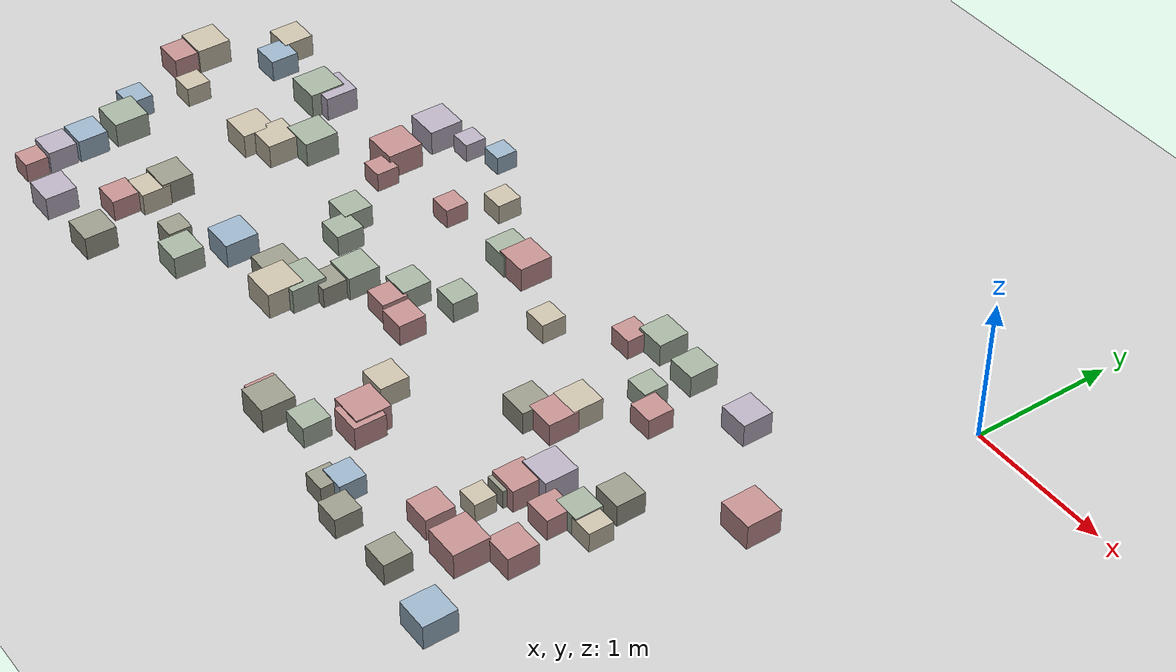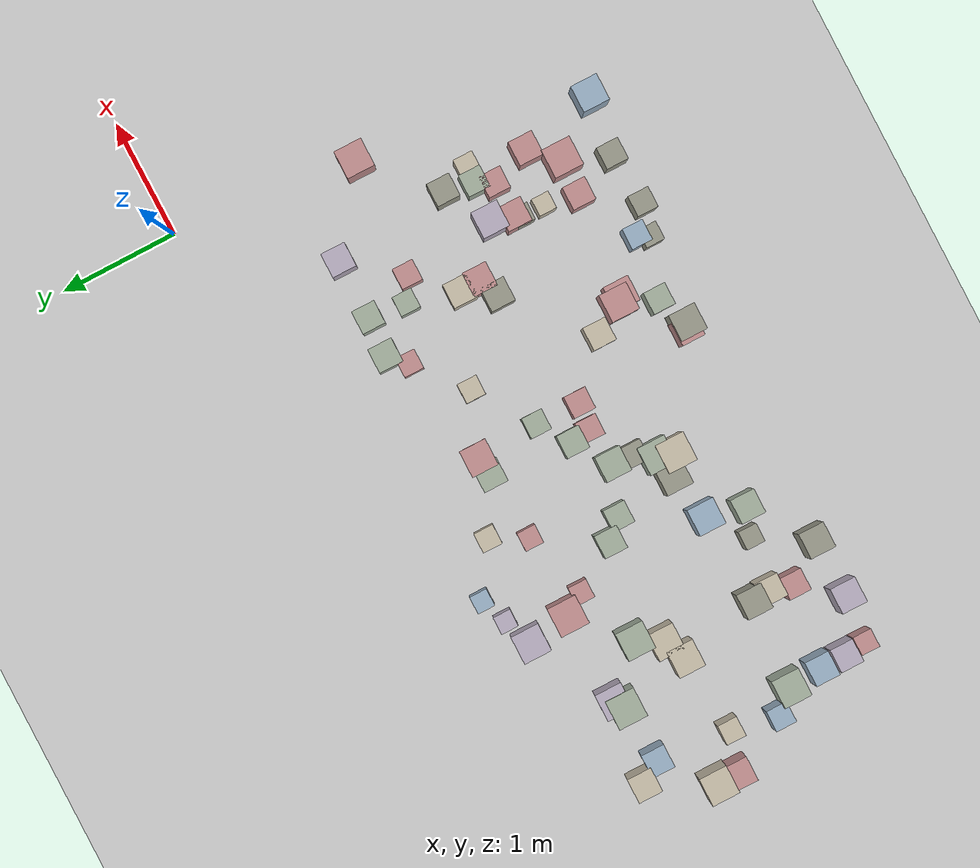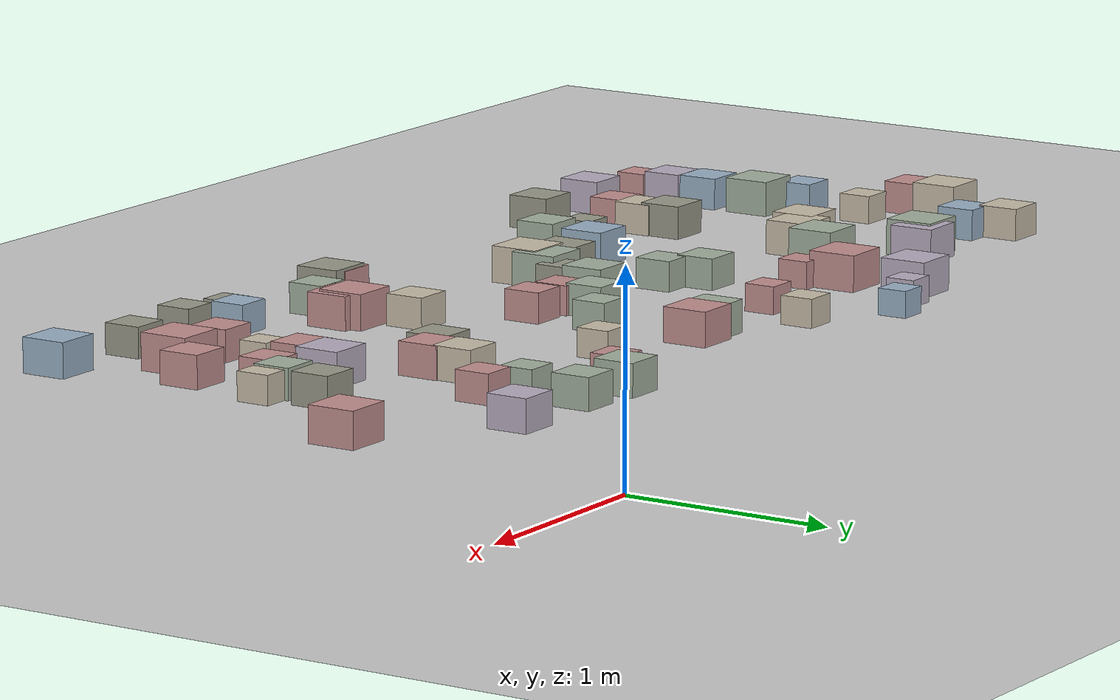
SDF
<sdf version="1.6">
 <world name="small_maze_world">
  <include><uri>model://ground_plane</uri></include>
  <include><uri>model://sun</uri></include>
  <model name="box_12">
   <static>false</static>
   <pose>-3.56 -2.64 0.05 0 0 0</pose>
   <link name="link">
    <inertial>
     <mass>0.2</mass>
     <inertia><ixx>0.001</ixx><iyy>0.001</iyy><izz>0.001</izz><ixy>0</ixy><ixz>0</ixz><iyz>0</iyz></inertia>
    </inertial>
    <collision name="collision"><geometry><box><size>0.23 0.23 0.23</size></box></geometry></collision>
    <visual name="visual">
     <geometry><box><size>0.23 0.23 0.23</size></box></geometry>
     <material><ambient>0.6 0.6 0.54 1</ambient><diffuse>0.6 0.6 0.54 1</diffuse></material>
    </visual>
   </link>
  </model>
  <model name="box_14">
   <static>false</static>
   <pose>-2.72 -1.34 0.05 0 0 0</pose>
   <link name="link">
    <inertial>
     <mass>0.2</mass>
     <inertia><ixx>0.001</ixx><iyy>0.001</iyy><izz>0.001</izz><ixy>0</ixy><ixz>0</ixz><iyz>0</iyz></inertia>
    </inertial>
    <collision name="collision"><geometry><box><size>0.23 0.23 0.23</size></box></geometry></collision>
    <visual name="visual">
     <geometry><box><size>0.23 0.23 0.23</size></box></geometry>
     <material><ambient>0.76 0.56 0.56 1</ambient><diffuse>0.76 0.56 0.56 1</diffuse></material>
    </visual>
   </link>
  </model>
  <model name="box_16">
   <static>false</static>
   <pose>-4.92 -1.4 0.05 0 0 0</pose>
   <link name="link">
    <inertial>
     <mass>0.2</mass>
     <inertia><ixx>0.001</ixx><iyy>0.001</iyy><izz>0.001</izz><ixy>0</ixy><ixz>0</ixz><iyz>0</iyz></inertia>
    </inertial>
    <collision name="collision"><geometry><box><size>0.23 0.23 0.23</size></box></geometry></collision>
    <visual name="visual">
     <geometry><box><size>0.23 0.23 0.23</size></box></geometry>
     <material><ambient>0.72 0.68 0.75 1</ambient><diffuse>0.72 0.68 0.75 1</diffuse></material>
    </visual>
   </link>
  </model>
  <model name="box_17">
   <static>false</static>
   <pose>-1.17 -2.54 0.05 0 0 0</pose>
   <link name="link">
    <inertial>
     <mass>0.2</mass>
     <inertia><ixx>0.001</ixx><iyy>0.001</iyy><izz>0.001</izz><ixy>0</ixy><ixz>0</ixz><iyz>0</iyz></inertia>
    </inertial>
    <collision name="collision"><geometry><box><size>0.15 0.15 0.15</size></box></geometry></collision>
    <visual name="visual">
     <geometry><box><size>0.15 0.15 0.15</size></box></geometry>
     <material><ambient>0.6 0.6 0.54 1</ambient><diffuse>0.6 0.6 0.54 1</diffuse></material>
    </visual>
   </link>
  </model>
  <model name="box_32">
   <static>false</static>
   <pose>-1.09 -2.29 0.05 0 0 0</pose>
   <link name="link">
    <inertial>
     <mass>0.2</mass>
     <inertia><ixx>0.001</ixx><iyy>0.001</iyy><izz>0.001</izz><ixy>0</ixy><ixz>0</ixz><iyz>0</iyz></inertia>
    </inertial>
    <collision name="collision"><geometry><box><size>0.23 0.23 0.23</size></box></geometry></collision>
    <visual name="visual">
     <geometry><box><size>0.23 0.23 0.23</size></box></geometry>
     <material><ambient>0.72 0.68 0.75 1</ambient><diffuse>0.72 0.68 0.75 1</diffuse></material>
    </visual>
   </link>
  </model>
  <model name="box_35">
   <static>false</static>
   <pose>-1.47 -2.0 0.05 0 0 0</pose>
   <link name="link">
    <inertial>
     <mass>0.2</mass>
     <inertia><ixx>0.001</ixx><iyy>0.001</iyy><izz>0.001</izz><ixy>0</ixy><ixz>0</ixz><iyz>0</iyz></inertia>
    </inertial>
    <collision name="collision"><geometry><box><size>0.21 0.21 0.21</size></box></geometry></collision>
    <visual name="visual">
     <geometry><box><size>0.21 0.21 0.21</size></box></geometry>
     <material><ambient>0.76 0.56 0.56 1</ambient><diffuse>0.76 0.56 0.56 1</diffuse></material>
    </visual>
   </link>
  </model>
  <model name="box_37">
   <static>false</static>
   <pose>-0.92 -3.02 0.05 0 0 0</pose>
   <link name="link">
    <inertial>
     <mass>0.2</mass>
     <inertia><ixx>0.001</ixx><iyy>0.001</iyy><izz>0.001</izz><ixy>0</ixy><ixz>0</ixz><iyz>0</iyz></inertia>
    </inertial>
    <collision name="collision"><geometry><box><size>0.25 0.25 0.25</size></box></geometry></collision>
    <visual name="visual">
     <geometry><box><size>0.25 0.25 0.25</size></box></geometry>
     <material><ambient>0.76 0.56 0.56 1</ambient><diffuse>0.76 0.56 0.56 1</diffuse></material>
    </visual>
   </link>
  </model>
  <model name="box_50">
   <static>false</static>
   <pose>-1.17 -2.73 0.05 0 0 0</pose>
   <link name="link">
    <inertial>
     <mass>0.2</mass>
     <inertia><ixx>0.001</ixx><iyy>0.001</iyy><izz>0.001</izz><ixy>0</ixy><ixz>0</ixz><iyz>0</iyz></inertia>
    </inertial>
    <collision name="collision"><geometry><box><size>0.15 0.15 0.15</size></box></geometry></collision>
    <visual name="visual">
     <geometry><box><size>0.15 0.15 0.15</size></box></geometry>
     <material><ambient>0.78 0.74 0.66 1</ambient><diffuse>0.78 0.74 0.66 1</diffuse></material>
    </visual>
   </link>
  </model>
  <model name="box_55">
   <static>false</static>
   <pose>-2.53 -3.3 0.05 0 0 0</pose>
   <link name="link">
    <inertial>
     <mass>0.2</mass>
     <inertia><ixx>0.001</ixx><iyy>0.001</iyy><izz>0.001</izz><ixy>0</ixy><ixz>0</ixz><iyz>0</iyz></inertia>
    </inertial>
    <collision name="collision"><geometry><box><size>0.23 0.23 0.23</size></box></geometry></collision>
    <visual name="visual">
     <geometry><box><size>0.23 0.23 0.23</size></box></geometry>
     <material><ambient>0.6 0.6 0.54 1</ambient><diffuse>0.6 0.6 0.54 1</diffuse></material>
    </visual>
   </link>
  </model>
  <model name="box_57">
   <static>false</static>
   <pose>-3.35 -2.6 0.05 0 0 0</pose>
   <link name="link">
    <inertial>
     <mass>0.2</mass>
     <inertia><ixx>0.001</ixx><iyy>0.001</iyy><izz>0.001</izz><ixy>0</ixy><ixz>0</ixz><iyz>0</iyz></inertia>
    </inertial>
    <collision name="collision"><geometry><box><size>0.24 0.24 0.24</size></box></geometry></collision>
    <visual name="visual">
     <geometry><box><size>0.24 0.24 0.24</size></box></geometry>
     <material><ambient>0.64 0.69 0.62 1</ambient><diffuse>0.64 0.69 0.62 1</diffuse></material>
    </visual>
   </link>
  </model>
  <model name="box_58">
   <static>false</static>
   <pose>-0.17 -1.56 0.05 0 0 0</pose>
   <link name="link">
    <inertial>
     <mass>0.2</mass>
     <inertia><ixx>0.001</ixx><iyy>0.001</iyy><izz>0.001</izz><ixy>0</ixy><ixz>0</ixz><iyz>0</iyz></inertia>
    </inertial>
    <collision name="collision"><geometry><box><size>0.24 0.24 0.24</size></box></geometry></collision>
    <visual name="visual">
     <geometry><box><size>0.24 0.24 0.24</size></box></geometry>
     <material><ambient>0.76 0.56 0.56 1</ambient><diffuse>0.76 0.56 0.56 1</diffuse></material>
    </visual>
   </link>
  </model>
  <model name="box_67">
   <static>false</static>
   <pose>-5.43 -3.39 0.05 0 0 0</pose>
   <link name="link">
    <inertial>
     <mass>0.2</mass>
     <inertia><ixx>0.001</ixx><iyy>0.001</iyy><izz>0.001</izz><ixy>0</ixy><ixz>0</ixz><iyz>0</iyz></inertia>
    </inertial>
    <collision name="collision"><geometry><box><size>0.16 0.16 0.16</size></box></geometry></collision>
    <visual name="visual">
     <geometry><box><size>0.16 0.16 0.16</size></box></geometry>
     <material><ambient>0.76 0.56 0.56 1</ambient><diffuse>0.76 0.56 0.56 1</diffuse></material>
    </visual>
   </link>
  </model>
  <model name="box_70">
   <static>false</static>
   <pose>-0.72 -2.8 0.05 0 0 0</pose>
   <link name="link">
    <inertial>
     <mass>0.2</mass>
     <inertia><ixx>0.001</ixx><iyy>0.001</iyy><izz>0.001</izz><ixy>0</ixy><ixz>0</ixz><iyz>0</iyz></inertia>
    </inertial>
    <collision name="collision"><geometry><box><size>0.21 0.21 0.21</size></box></geometry></collision>
    <visual name="visual">
     <geometry><box><size>0.21 0.21 0.21</size></box></geometry>
     <material><ambient>0.76 0.56 0.56 1</ambient><diffuse>0.76 0.56 0.56 1</diffuse></material>
    </visual>
   </link>
  </model>
  <model name="box_74">
   <static>false</static>
   <pose>-2.26 -3.19 0.05 0 0 0</pose>
   <link name="link">
    <inertial>
     <mass>0.2</mass>
     <inertia><ixx>0.001</ixx><iyy>0.001</iyy><izz>0.001</izz><ixy>0</ixy><ixz>0</ixz><iyz>0</iyz></inertia>
    </inertial>
    <collision name="collision"><geometry><box><size>0.19 0.19 0.19</size></box></geometry></collision>
    <visual name="visual">
     <geometry><box><size>0.19 0.19 0.19</size></box></geometry>
     <material><ambient>0.64 0.69 0.62 1</ambient><diffuse>0.64 0.69 0.62 1</diffuse></material>
    </visual>
   </link>
  </model>
  <model name="box_75">
   <static>false</static>
   <pose>-3.64 -2.11 0.05 0 0 0</pose>
   <link name="link">
    <inertial>
     <mass>0.2</mass>
     <inertia><ixx>0.001</ixx><iyy>0.001</iyy><izz>0.001</izz><ixy>0</ixy><ixz>0</ixz><iyz>0</iyz></inertia>
    </inertial>
    <collision name="collision"><geometry><box><size>0.19 0.19 0.19</size></box></geometry></collision>
    <visual name="visual">
     <geometry><box><size>0.19 0.19 0.19</size></box></geometry>
     <material><ambient>0.64 0.69 0.62 1</ambient><diffuse>0.64 0.69 0.62 1</diffuse></material>
    </visual>
   </link>
  </model>
  <model name="box_76">
   <static>false</static>
   <pose>-0.76 -2.32 0.05 0 0 0</pose>
   <link name="link">
    <inertial>
     <mass>0.2</mass>
     <inertia><ixx>0.001</ixx><iyy>0.001</iyy><izz>0.001</izz><ixy>0</ixy><ixz>0</ixz><iyz>0</iyz></inertia>
    </inertial>
    <collision name="collision"><geometry><box><size>0.19 0.19 0.19</size></box></geometry></collision>
    <visual name="visual">
     <geometry><box><size>0.19 0.19 0.19</size></box></geometry>
     <material><ambient>0.64 0.69 0.62 1</ambient><diffuse>0.64 0.69 0.62 1</diffuse></material>
    </visual>
   </link>
  </model>
  <model name="box_77">
   <static>false</static>
   <pose>-5.64 -2.52 0.05 0 0 0</pose>
   <link name="link">
    <inertial>
     <mass>0.2</mass>
     <inertia><ixx>0.001</ixx><iyy>0.001</iyy><izz>0.001</izz><ixy>0</ixy><ixz>0</ixz><iyz>0</iyz></inertia>
    </inertial>
    <collision name="collision"><geometry><box><size>0.18 0.18 0.18</size></box></geometry></collision>
    <visual name="visual">
     <geometry><box><size>0.18 0.18 0.18</size></box></geometry>
     <material><ambient>0.6 0.69 0.77 1</ambient><diffuse>0.6 0.69 0.77 1</diffuse></material>
    </visual>
   </link>
  </model>
  <model name="box_97">
   <static>false</static>
   <pose>-1.17 -1.51 0.05 0 0 0</pose>
   <link name="link">
    <inertial>
     <mass>0.2</mass>
     <inertia><ixx>0.001</ixx><iyy>0.001</iyy><izz>0.001</izz><ixy>0</ixy><ixz>0</ixz><iyz>0</iyz></inertia>
    </inertial>
    <collision name="collision"><geometry><box><size>0.18 0.18 0.18</size></box></geometry></collision>
    <visual name="visual">
     <geometry><box><size>0.18 0.18 0.18</size></box></geometry>
     <material><ambient>0.76 0.56 0.56 1</ambient><diffuse>0.76 0.56 0.56 1</diffuse></material>
    </visual>
   </link>
  </model>
  <model name="box_108">
   <static>false</static>
   <pose>-1.07 -3.39 0.05 0 0 0</pose>
   <link name="link">
    <inertial>
     <mass>0.2</mass>
     <inertia><ixx>0.001</ixx><iyy>0.001</iyy><izz>0.001</izz><ixy>0</ixy><ixz>0</ixz><iyz>0</iyz></inertia>
    </inertial>
    <collision name="collision"><geometry><box><size>0.19 0.19 0.19</size></box></geometry></collision>
    <visual name="visual">
     <geometry><box><size>0.19 0.19 0.19</size></box></geometry>
     <material><ambient>0.6 0.6 0.54 1</ambient><diffuse>0.6 0.6 0.54 1</diffuse></material>
    </visual>
   </link>
  </model>
  <model name="box_124">
   <static>false</static>
   <pose>-5.62 -1.31 0.05 0 0 0</pose>
   <link name="link">
    <inertial>
     <mass>0.2</mass>
     <inertia><ixx>0.001</ixx><iyy>0.001</iyy><izz>0.001</izz><ixy>0</ixy><ixz>0</ixz><iyz>0</iyz></inertia>
    </inertial>
    <collision name="collision"><geometry><box><size>0.21 0.21 0.21</size></box></geometry></collision>
    <visual name="visual">
     <geometry><box><size>0.21 0.21 0.21</size></box></geometry>
     <material><ambient>0.78 0.74 0.66 1</ambient><diffuse>0.78 0.74 0.66 1</diffuse></material>
    </visual>
   </link>
  </model>
  <model name="box_130">
   <static>false</static>
   <pose>-3.25 -2.26 0.05 0 0 0</pose>
   <link name="link">
    <inertial>
     <mass>0.2</mass>
     <inertia><ixx>0.001</ixx><iyy>0.001</iyy><izz>0.001</izz><ixy>0</ixy><ixz>0</ixz><iyz>0</iyz></inertia>
    </inertial>
    <collision name="collision"><geometry><box><size>0.22 0.22 0.22</size></box></geometry></collision>
    <visual name="visual">
     <geometry><box><size>0.22 0.22 0.22</size></box></geometry>
     <material><ambient>0.64 0.69 0.62 1</ambient><diffuse>0.64 0.69 0.62 1</diffuse></material>
    </visual>
   </link>
  </model>
  <model name="box_132">
   <static>false</static>
   <pose>-4.53 -3.41 0.05 0 0 0</pose>
   <link name="link">
    <inertial>
     <mass>0.2</mass>
     <inertia><ixx>0.001</ixx><iyy>0.001</iyy><izz>0.001</izz><ixy>0</ixy><ixz>0</ixz><iyz>0</iyz></inertia>
    </inertial>
    <collision name="collision"><geometry><box><size>0.22 0.22 0.22</size></box></geometry></collision>
    <visual name="visual">
     <geometry><box><size>0.22 0.22 0.22</size></box></geometry>
     <material><ambient>0.6 0.6 0.54 1</ambient><diffuse>0.6 0.6 0.54 1</diffuse></material>
    </visual>
   </link>
  </model>
  <model name="box_148">
   <static>false</static>
   <pose>-2.69 -1.87 0.05 0 0 0</pose>
   <link name="link">
    <inertial>
     <mass>0.2</mass>
     <inertia><ixx>0.001</ixx><iyy>0.001</iyy><izz>0.001</izz><ixy>0</ixy><ixz>0</ixz><iyz>0</iyz></inertia>
    </inertial>
    <collision name="collision"><geometry><box><size>0.18 0.18 0.18</size></box></geometry></collision>
    <visual name="visual">
     <geometry><box><size>0.18 0.18 0.18</size></box></geometry>
     <material><ambient>0.64 0.69 0.62 1</ambient><diffuse>0.64 0.69 0.62 1</diffuse></material>
    </visual>
   </link>
  </model>
  <model name="box_159">
   <static>false</static>
   <pose>-2.58 -3.28 0.05 0 0 0</pose>
   <link name="link">
    <inertial>
     <mass>0.2</mass>
     <inertia><ixx>0.001</ixx><iyy>0.001</iyy><izz>0.001</izz><ixy>0</ixy><ixz>0</ixz><iyz>0</iyz></inertia>
    </inertial>
    <collision name="collision"><geometry><box><size>0.2 0.2 0.2</size></box></geometry></collision>
    <visual name="visual">
     <geometry><box><size>0.2 0.2 0.2</size></box></geometry>
     <material><ambient>0.76 0.56 0.56 1</ambient><diffuse>0.76 0.56 0.56 1</diffuse></material>
    </visual>
   </link>
  </model>
  <model name="box_163">
   <static>false</static>
   <pose>-5.03 -3.43 0.05 0 0 0</pose>
   <link name="link">
    <inertial>
     <mass>0.2</mass>
     <inertia><ixx>0.001</ixx><iyy>0.001</iyy><izz>0.001</izz><ixy>0</ixy><ixz>0</ixz><iyz>0</iyz></inertia>
    </inertial>
    <collision name="collision"><geometry><box><size>0.22 0.22 0.22</size></box></geometry></collision>
    <visual name="visual">
     <geometry><box><size>0.22 0.22 0.22</size></box></geometry>
     <material><ambient>0.72 0.68 0.75 1</ambient><diffuse>0.72 0.68 0.75 1</diffuse></material>
    </visual>
   </link>
  </model>
  <model name="box_166">
   <static>false</static>
   <pose>-5.01 -1.46 0.05 0 0 0</pose>
   <link name="link">
    <inertial>
     <mass>0.2</mass>
     <inertia><ixx>0.001</ixx><iyy>0.001</iyy><izz>0.001</izz><ixy>0</ixy><ixz>0</ixz><iyz>0</iyz></inertia>
    </inertial>
    <collision name="collision"><geometry><box><size>0.25 0.25 0.25</size></box></geometry></collision>
    <visual name="visual">
     <geometry><box><size>0.25 0.25 0.25</size></box></geometry>
     <material><ambient>0.64 0.69 0.62 1</ambient><diffuse>0.64 0.69 0.62 1</diffuse></material>
    </visual>
   </link>
  </model>
  <model name="box_167">
   <static>false</static>
   <pose>-5.45 -2.98 0.05 0 0 0</pose>
   <link name="link">
    <inertial>
     <mass>0.2</mass>
     <inertia><ixx>0.001</ixx><iyy>0.001</iyy><izz>0.001</izz><ixy>0</ixy><ixz>0</ixz><iyz>0</iyz></inertia>
    </inertial>
    <collision name="collision"><geometry><box><size>0.21 0.21 0.21</size></box></geometry></collision>
    <visual name="visual">
     <geometry><box><size>0.21 0.21 0.21</size></box></geometry>
     <material><ambient>0.6 0.69 0.77 1</ambient><diffuse>0.6 0.69 0.77 1</diffuse></material>
    </visual>
   </link>
  </model>
  <model name="box_185">
   <static>false</static>
   <pose>-1.33 -1.08 0.05 0 0 0</pose>
   <link name="link">
    <inertial>
     <mass>0.2</mass>
     <inertia><ixx>0.001</ixx><iyy>0.001</iyy><izz>0.001</izz><ixy>0</ixy><ixz>0</ixz><iyz>0</iyz></inertia>
    </inertial>
    <collision name="collision"><geometry><box><size>0.2 0.2 0.2</size></box></geometry></collision>
    <visual name="visual">
     <geometry><box><size>0.2 0.2 0.2</size></box></geometry>
     <material><ambient>0.64 0.69 0.62 1</ambient><diffuse>0.64 0.69 0.62 1</diffuse></material>
    </visual>
   </link>
  </model>
  <model name="box_189">
   <static>false</static>
   <pose>-4.71 -2.91 0.05 0 0 0</pose>
   <link name="link">
    <inertial>
     <mass>0.2</mass>
     <inertia><ixx>0.001</ixx><iyy>0.001</iyy><izz>0.001</izz><ixy>0</ixy><ixz>0</ixz><iyz>0</iyz></inertia>
    </inertial>
    <collision name="collision"><geometry><box><size>0.2 0.2 0.2</size></box></geometry></collision>
    <visual name="visual">
     <geometry><box><size>0.2 0.2 0.2</size></box></geometry>
     <material><ambient>0.78 0.74 0.66 1</ambient><diffuse>0.78 0.74 0.66 1</diffuse></material>
    </visual>
   </link>
  </model>
  <model name="box_199">
   <static>false</static>
   <pose>-4.27 -2.97 0.05 0 0 0</pose>
   <link name="link">
    <inertial>
     <mass>0.2</mass>
     <inertia><ixx>0.001</ixx><iyy>0.001</iyy><izz>0.001</izz><ixy>0</ixy><ixz>0</ixz><iyz>0</iyz></inertia>
    </inertial>
    <collision name="collision"><geometry><box><size>0.16 0.16 0.16</size></box></geometry></collision>
    <visual name="visual">
     <geometry><box><size>0.16 0.16 0.16</size></box></geometry>
     <material><ambient>0.6 0.6 0.54 1</ambient><diffuse>0.6 0.6 0.54 1</diffuse></material>
    </visual>
   </link>
  </model>
  <model name="box_210">
   <static>false</static>
   <pose>-5.47 -2.69 0.05 0 0 0</pose>
   <link name="link">
    <inertial>
     <mass>0.2</mass>
     <inertia><ixx>0.001</ixx><iyy>0.001</iyy><izz>0.001</izz><ixy>0</ixy><ixz>0</ixz><iyz>0</iyz></inertia>
    </inertial>
    <collision name="collision"><geometry><box><size>0.24 0.24 0.24</size></box></geometry></collision>
    <visual name="visual">
     <geometry><box><size>0.24 0.24 0.24</size></box></geometry>
     <material><ambient>0.64 0.69 0.62 1</ambient><diffuse>0.64 0.69 0.62 1</diffuse></material>
    </visual>
   </link>
  </model>
  <model name="box_227">
   <static>false</static>
   <pose>-0.62 -2.33 0.05 0 0 0</pose>
   <link name="link">
    <inertial>
     <mass>0.2</mass>
     <inertia><ixx>0.001</ixx><iyy>0.001</iyy><izz>0.001</izz><ixy>0</ixy><ixz>0</ixz><iyz>0</iyz></inertia>
    </inertial>
    <collision name="collision"><geometry><box><size>0.17 0.17 0.17</size></box></geometry></collision>
    <visual name="visual">
     <geometry><box><size>0.17 0.17 0.17</size></box></geometry>
     <material><ambient>0.78 0.74 0.66 1</ambient><diffuse>0.78 0.74 0.66 1</diffuse></material>
    </visual>
   </link>
  </model>
  <model name="box_228">
   <static>false</static>
   <pose>-1.8 -1.2 0.05 0 0 0</pose>
   <link name="link">
    <inertial>
     <mass>0.2</mass>
     <inertia><ixx>0.001</ixx><iyy>0.001</iyy><izz>0.001</izz><ixy>0</ixy><ixz>0</ixz><iyz>0</iyz></inertia>
    </inertial>
    <collision name="collision"><geometry><box><size>0.17 0.17 0.17</size></box></geometry></collision>
    <visual name="visual">
     <geometry><box><size>0.17 0.17 0.17</size></box></geometry>
     <material><ambient>0.76 0.56 0.56 1</ambient><diffuse>0.76 0.56 0.56 1</diffuse></material>
    </visual>
   </link>
  </model>
  <model name="box_236">
   <static>false</static>
   <pose>-5.5 -1.49 0.05 0 0 0</pose>
   <link name="link">
    <inertial>
     <mass>0.2</mass>
     <inertia><ixx>0.001</ixx><iyy>0.001</iyy><izz>0.001</izz><ixy>0</ixy><ixz>0</ixz><iyz>0</iyz></inertia>
    </inertial>
    <collision name="collision"><geometry><box><size>0.2 0.2 0.2</size></box></geometry></collision>
    <visual name="visual">
     <geometry><box><size>0.2 0.2 0.2</size></box></geometry>
     <material><ambient>0.6 0.69 0.77 1</ambient><diffuse>0.6 0.69 0.77 1</diffuse></material>
    </visual>
   </link>
  </model>
  <model name="box_240">
   <static>false</static>
   <pose>-0.57 -3.45 0.05 0 0 0</pose>
   <link name="link">
    <inertial>
     <mass>0.2</mass>
     <inertia><ixx>0.001</ixx><iyy>0.001</iyy><izz>0.001</izz><ixy>0</ixy><ixz>0</ixz><iyz>0</iyz></inertia>
    </inertial>
    <collision name="collision"><geometry><box><size>0.23 0.23 0.23</size></box></geometry></collision>
    <visual name="visual">
     <geometry><box><size>0.23 0.23 0.23</size></box></geometry>
     <material><ambient>0.6 0.69 0.77 1</ambient><diffuse>0.6 0.69 0.77 1</diffuse></material>
    </visual>
   </link>
  </model>
  <model name="box_248">
   <static>false</static>
   <pose>-3.32 -1.11 0.05 0 0 0</pose>
   <link name="link">
    <inertial>
     <mass>0.2</mass>
     <inertia><ixx>0.001</ixx><iyy>0.001</iyy><izz>0.001</izz><ixy>0</ixy><ixz>0</ixz><iyz>0</iyz></inertia>
    </inertial>
    <collision name="collision"><geometry><box><size>0.17 0.17 0.17</size></box></geometry></collision>
    <visual name="visual">
     <geometry><box><size>0.17 0.17 0.17</size></box></geometry>
     <material><ambient>0.78 0.74 0.66 1</ambient><diffuse>0.78 0.74 0.66 1</diffuse></material>
    </visual>
   </link>
  </model>
  <model name="box_253">
   <static>false</static>
   <pose>-3.4 -2.74 0.05 0 0 0</pose>
   <link name="link">
    <inertial>
     <mass>0.2</mass>
     <inertia><ixx>0.001</ixx><iyy>0.001</iyy><izz>0.001</izz><ixy>0</ixy><ixz>0</ixz><iyz>0</iyz></inertia>
    </inertial>
    <collision name="collision"><geometry><box><size>0.25 0.25 0.25</size></box></geometry></collision>
    <visual name="visual">
     <geometry><box><size>0.25 0.25 0.25</size></box></geometry>
     <material><ambient>0.78 0.74 0.66 1</ambient><diffuse>0.78 0.74 0.66 1</diffuse></material>
    </visual>
   </link>
  </model>
  <model name="box_258">
   <static>false</static>
   <pose>-1.78 -3.37 0.05 0 0 0</pose>
   <link name="link">
    <inertial>
     <mass>0.2</mass>
     <inertia><ixx>0.001</ixx><iyy>0.001</iyy><izz>0.001</izz><ixy>0</ixy><ixz>0</ixz><iyz>0</iyz></inertia>
    </inertial>
    <collision name="collision"><geometry><box><size>0.16 0.16 0.16</size></box></geometry></collision>
    <visual name="visual">
     <geometry><box><size>0.16 0.16 0.16</size></box></geometry>
     <material><ambient>0.6 0.6 0.54 1</ambient><diffuse>0.6 0.6 0.54 1</diffuse></material>
    </visual>
   </link>
  </model>
  <model name="box_267">
   <static>false</static>
   <pose>-1.36 -1.4 0.05 0 0 0</pose>
   <link name="link">
    <inertial>
     <mass>0.2</mass>
     <inertia><ixx>0.001</ixx><iyy>0.001</iyy><izz>0.001</izz><ixy>0</ixy><ixz>0</ixz><iyz>0</iyz></inertia>
    </inertial>
    <collision name="collision"><geometry><box><size>0.17 0.17 0.17</size></box></geometry></collision>
    <visual name="visual">
     <geometry><box><size>0.17 0.17 0.17</size></box></geometry>
     <material><ambient>0.64 0.69 0.62 1</ambient><diffuse>0.64 0.69 0.62 1</diffuse></material>
    </visual>
   </link>
  </model>
  <model name="box_268">
   <static>false</static>
   <pose>-2.29 -2.64 0.05 0 0 0</pose>
   <link name="link">
    <inertial>
     <mass>0.2</mass>
     <inertia><ixx>0.001</ixx><iyy>0.001</iyy><izz>0.001</izz><ixy>0</ixy><ixz>0</ixz><iyz>0</iyz></inertia>
    </inertial>
    <collision name="collision"><geometry><box><size>0.2 0.2 0.2</size></box></geometry></collision>
    <visual name="visual">
     <geometry><box><size>0.2 0.2 0.2</size></box></geometry>
     <material><ambient>0.78 0.74 0.66 1</ambient><diffuse>0.78 0.74 0.66 1</diffuse></material>
    </visual>
   </link>
  </model>
  <model name="box_270">
   <static>false</static>
   <pose>-4.73 -2.75 0.05 0 0 0</pose>
   <link name="link">
    <inertial>
     <mass>0.2</mass>
     <inertia><ixx>0.001</ixx><iyy>0.001</iyy><izz>0.001</izz><ixy>0</ixy><ixz>0</ixz><iyz>0</iyz></inertia>
    </inertial>
    <collision name="collision"><geometry><box><size>0.22 0.22 0.22</size></box></geometry></collision>
    <visual name="visual">
     <geometry><box><size>0.22 0.22 0.22</size></box></geometry>
     <material><ambient>0.6 0.6 0.54 1</ambient><diffuse>0.6 0.6 0.54 1</diffuse></material>
    </visual>
   </link>
  </model>
  <model name="box_278">
   <static>false</static>
   <pose>-3.96 -2.72 0.05 0 0 0</pose>
   <link name="link">
    <inertial>
     <mass>0.2</mass>
     <inertia><ixx>0.001</ixx><iyy>0.001</iyy><izz>0.001</izz><ixy>0</ixy><ixz>0</ixz><iyz>0</iyz></inertia>
    </inertial>
    <collision name="collision"><geometry><box><size>0.23 0.23 0.23</size></box></geometry></collision>
    <visual name="visual">
     <geometry><box><size>0.23 0.23 0.23</size></box></geometry>
     <material><ambient>0.6 0.69 0.77 1</ambient><diffuse>0.6 0.69 0.77 1</diffuse></material>
    </visual>
   </link>
  </model>
  <model name="box_281">
   <static>false</static>
   <pose>-2.14 -2.89 0.05 0 0 0</pose>
   <link name="link">
    <inertial>
     <mass>0.2</mass>
     <inertia><ixx>0.001</ixx><iyy>0.001</iyy><izz>0.001</izz><ixy>0</ixy><ixz>0</ixz><iyz>0</iyz></inertia>
    </inertial>
    <collision name="collision"><geometry><box><size>0.24 0.24 0.24</size></box></geometry></collision>
    <visual name="visual">
     <geometry><box><size>0.24 0.24 0.24</size></box></geometry>
     <material><ambient>0.76 0.56 0.56 1</ambient><diffuse>0.76 0.56 0.56 1</diffuse></material>
    </visual>
   </link>
  </model>
  <model name="box_284">
   <static>false</static>
   <pose>-4.57 -1.77 0.05 0 0 0</pose>
   <link name="link">
    <inertial>
     <mass>0.2</mass>
     <inertia><ixx>0.001</ixx><iyy>0.001</iyy><izz>0.001</izz><ixy>0</ixy><ixz>0</ixz><iyz>0</iyz></inertia>
    </inertial>
    <collision name="collision"><geometry><box><size>0.24 0.24 0.24</size></box></geometry></collision>
    <visual name="visual">
     <geometry><box><size>0.24 0.24 0.24</size></box></geometry>
     <material><ambient>0.64 0.69 0.62 1</ambient><diffuse>0.64 0.69 0.62 1</diffuse></material>
    </visual>
   </link>
  </model>
  <model name="box_293">
   <static>false</static>
   <pose>-3.79 -1.96 0.05 0 0 0</pose>
   <link name="link">
    <inertial>
     <mass>0.2</mass>
     <inertia><ixx>0.001</ixx><iyy>0.001</iyy><izz>0.001</izz><ixy>0</ixy><ixz>0</ixz><iyz>0</iyz></inertia>
    </inertial>
    <collision name="collision"><geometry><box><size>0.2 0.2 0.2</size></box></geometry></collision>
    <visual name="visual">
     <geometry><box><size>0.2 0.2 0.2</size></box></geometry>
     <material><ambient>0.64 0.69 0.62 1</ambient><diffuse>0.64 0.69 0.62 1</diffuse></material>
    </visual>
   </link>
  </model>
  <model name="box_297">
   <static>false</static>
   <pose>-1.73 -3.27 0.05 0 0 0</pose>
   <link name="link">
    <inertial>
     <mass>0.2</mass>
     <inertia><ixx>0.001</ixx><iyy>0.001</iyy><izz>0.001</izz><ixy>0</ixy><ixz>0</ixz><iyz>0</iyz></inertia>
    </inertial>
    <collision name="collision"><geometry><box><size>0.18 0.18 0.18</size></box></geometry></collision>
    <visual name="visual">
     <geometry><box><size>0.18 0.18 0.18</size></box></geometry>
     <material><ambient>0.6 0.69 0.77 1</ambient><diffuse>0.6 0.69 0.77 1</diffuse></material>
    </visual>
   </link>
  </model>
  <model name="box_300">
   <static>false</static>
   <pose>-2.21 -1.54 0.05 0 0 0</pose>
   <link name="link">
    <inertial>
     <mass>0.2</mass>
     <inertia><ixx>0.001</ixx><iyy>0.001</iyy><izz>0.001</izz><ixy>0</ixy><ixz>0</ixz><iyz>0</iyz></inertia>
    </inertial>
    <collision name="collision"><geometry><box><size>0.17 0.17 0.17</size></box></geometry></collision>
    <visual name="visual">
     <geometry><box><size>0.17 0.17 0.17</size></box></geometry>
     <material><ambient>0.78 0.74 0.66 1</ambient><diffuse>0.78 0.74 0.66 1</diffuse></material>
    </visual>
   </link>
  </model>
  <model name="box_304">
   <static>false</static>
   <pose>-4.21 -1.03 0.05 0 0 0</pose>
   <link name="link">
    <inertial>
     <mass>0.2</mass>
     <inertia><ixx>0.001</ixx><iyy>0.001</iyy><izz>0.001</izz><ixy>0</ixy><ixz>0</ixz><iyz>0</iyz></inertia>
    </inertial>
    <collision name="collision"><geometry><box><size>0.24 0.24 0.24</size></box></geometry></collision>
    <visual name="visual">
     <geometry><box><size>0.24 0.24 0.24</size></box></geometry>
     <material><ambient>0.72 0.68 0.75 1</ambient><diffuse>0.72 0.68 0.75 1</diffuse></material>
    </visual>
   </link>
  </model>
  <model name="box_308">
   <static>false</static>
   <pose>-0.84 -2.46 0.05 0 0 0</pose>
   <link name="link">
    <inertial>
     <mass>0.2</mass>
     <inertia><ixx>0.001</ixx><iyy>0.001</iyy><izz>0.001</izz><ixy>0</ixy><ixz>0</ixz><iyz>0</iyz></inertia>
    </inertial>
    <collision name="collision"><geometry><box><size>0.19 0.19 0.19</size></box></geometry></collision>
    <visual name="visual">
     <geometry><box><size>0.19 0.19 0.19</size></box></geometry>
     <material><ambient>0.76 0.56 0.56 1</ambient><diffuse>0.76 0.56 0.56 1</diffuse></material>
    </visual>
   </link>
  </model>
  <model name="box_310">
   <static>false</static>
   <pose>-5.45 -3.2 0.05 0 0 0</pose>
   <link name="link">
    <inertial>
     <mass>0.2</mass>
     <inertia><ixx>0.001</ixx><iyy>0.001</iyy><izz>0.001</izz><ixy>0</ixy><ixz>0</ixz><iyz>0</iyz></inertia>
    </inertial>
    <collision name="collision"><geometry><box><size>0.2 0.2 0.2</size></box></geometry></collision>
    <visual name="visual">
     <geometry><box><size>0.2 0.2 0.2</size></box></geometry>
     <material><ambient>0.72 0.68 0.75 1</ambient><diffuse>0.72 0.68 0.75 1</diffuse></material>
    </visual>
   </link>
  </model>
  <model name="box_316">
   <static>false</static>
   <pose>-2.7 -2.25 0.05 0 0 0</pose>
   <link name="link">
    <inertial>
     <mass>0.2</mass>
     <inertia><ixx>0.001</ixx><iyy>0.001</iyy><izz>0.001</izz><ixy>0</ixy><ixz>0</ixz><iyz>0</iyz></inertia>
    </inertial>
    <collision name="collision"><geometry><box><size>0.19 0.19 0.19</size></box></geometry></collision>
    <visual name="visual">
     <geometry><box><size>0.19 0.19 0.19</size></box></geometry>
     <material><ambient>0.76 0.56 0.56 1</ambient><diffuse>0.76 0.56 0.56 1</diffuse></material>
    </visual>
   </link>
  </model>
  <model name="box_319">
   <static>false</static>
   <pose>-2.95 -2.06 0.05 0 0 0</pose>
   <link name="link">
    <inertial>
     <mass>0.2</mass>
     <inertia><ixx>0.001</ixx><iyy>0.001</iyy><izz>0.001</izz><ixy>0</ixy><ixz>0</ixz><iyz>0</iyz></inertia>
    </inertial>
    <collision name="collision"><geometry><box><size>0.2 0.2 0.2</size></box></geometry></collision>
    <visual name="visual">
     <geometry><box><size>0.2 0.2 0.2</size></box></geometry>
     <material><ambient>0.64 0.69 0.62 1</ambient><diffuse>0.64 0.69 0.62 1</diffuse></material>
    </visual>
   </link>
  </model>
  <model name="box_326">
   <static>false</static>
   <pose>-3.26 -2.45 0.05 0 0 0</pose>
   <link name="link">
    <inertial>
     <mass>0.2</mass>
     <inertia><ixx>0.001</ixx><iyy>0.001</iyy><izz>0.001</izz><ixy>0</ixy><ixz>0</ixz><iyz>0</iyz></inertia>
    </inertial>
    <collision name="collision"><geometry><box><size>0.18 0.18 0.18</size></box></geometry></collision>
    <visual name="visual">
     <geometry><box><size>0.18 0.18 0.18</size></box></geometry>
     <material><ambient>0.6 0.6 0.54 1</ambient><diffuse>0.6 0.6 0.54 1</diffuse></material>
    </visual>
   </link>
  </model>
  <model name="box_333">
   <static>false</static>
   <pose>-4.15 -1.39 0.05 0 0 0</pose>
   <link name="link">
    <inertial>
     <mass>0.2</mass>
     <inertia><ixx>0.001</ixx><iyy>0.001</iyy><izz>0.001</izz><ixy>0</ixy><ixz>0</ixz><iyz>0</iyz></inertia>
    </inertial>
    <collision name="collision"><geometry><box><size>0.25 0.25 0.25</size></box></geometry></collision>
    <visual name="visual">
     <geometry><box><size>0.25 0.25 0.25</size></box></geometry>
     <material><ambient>0.76 0.56 0.56 1</ambient><diffuse>0.76 0.56 0.56 1</diffuse></material>
    </visual>
   </link>
  </model>
  <model name="box_335">
   <static>false</static>
   <pose>-1.52 -3.43 0.05 0 0 0</pose>
   <link name="link">
    <inertial>
     <mass>0.2</mass>
     <inertia><ixx>0.001</ixx><iyy>0.001</iyy><izz>0.001</izz><ixy>0</ixy><ixz>0</ixz><iyz>0</iyz></inertia>
    </inertial>
    <collision name="collision"><geometry><box><size>0.18 0.18 0.18</size></box></geometry></collision>
    <visual name="visual">
     <geometry><box><size>0.18 0.18 0.18</size></box></geometry>
     <material><ambient>0.6 0.6 0.54 1</ambient><diffuse>0.6 0.6 0.54 1</diffuse></material>
    </visual>
   </link>
  </model>
  <model name="box_344">
   <static>false</static>
   <pose>-1.66 -1.06 0.05 0 0 0</pose>
   <link name="link">
    <inertial>
     <mass>0.2</mass>
     <inertia><ixx>0.001</ixx><iyy>0.001</iyy><izz>0.001</izz><ixy>0</ixy><ixz>0</ixz><iyz>0</iyz></inertia>
    </inertial>
    <collision name="collision"><geometry><box><size>0.21 0.21 0.21</size></box></geometry></collision>
    <visual name="visual">
     <geometry><box><size>0.21 0.21 0.21</size></box></geometry>
     <material><ambient>0.64 0.69 0.62 1</ambient><diffuse>0.64 0.69 0.62 1</diffuse></material>
    </visual>
   </link>
  </model>
  <model name="box_351">
   <static>false</static>
   <pose>-1.64 -2.07 0.05 0 0 0</pose>
   <link name="link">
    <inertial>
     <mass>0.2</mass>
     <inertia><ixx>0.001</ixx><iyy>0.001</iyy><izz>0.001</izz><ixy>0</ixy><ixz>0</ixz><iyz>0</iyz></inertia>
    </inertial>
    <collision name="collision"><geometry><box><size>0.21 0.21 0.21</size></box></geometry></collision>
    <visual name="visual">
     <geometry><box><size>0.21 0.21 0.21</size></box></geometry>
     <material><ambient>0.6 0.6 0.54 1</ambient><diffuse>0.6 0.6 0.54 1</diffuse></material>
    </visual>
   </link>
  </model>
  <model name="box_360">
   <static>false</static>
   <pose>-1.48 -1.82 0.05 0 0 0</pose>
   <link name="link">
    <inertial>
     <mass>0.2</mass>
     <inertia><ixx>0.001</ixx><iyy>0.001</iyy><izz>0.001</izz><ixy>0</ixy><ixz>0</ixz><iyz>0</iyz></inertia>
    </inertial>
    <collision name="collision"><geometry><box><size>0.21 0.21 0.21</size></box></geometry></collision>
    <visual name="visual">
     <geometry><box><size>0.21 0.21 0.21</size></box></geometry>
     <material><ambient>0.78 0.74 0.66 1</ambient><diffuse>0.78 0.74 0.66 1</diffuse></material>
    </visual>
   </link>
  </model>
  <model name="box_361">
   <static>false</static>
   <pose>-2.88 -1.36 0.05 0 0 0</pose>
   <link name="link">
    <inertial>
     <mass>0.2</mass>
     <inertia><ixx>0.001</ixx><iyy>0.001</iyy><izz>0.001</izz><ixy>0</ixy><ixz>0</ixz><iyz>0</iyz></inertia>
    </inertial>
    <collision name="collision"><geometry><box><size>0.21 0.21 0.21</size></box></geometry></collision>
    <visual name="visual">
     <geometry><box><size>0.21 0.21 0.21</size></box></geometry>
     <material><ambient>0.64 0.69 0.62 1</ambient><diffuse>0.64 0.69 0.62 1</diffuse></material>
    </visual>
   </link>
  </model>
  <model name="box_362">
   <static>false</static>
   <pose>-4.88 -2.06 0.05 0 0 0</pose>
   <link name="link">
    <inertial>
     <mass>0.2</mass>
     <inertia><ixx>0.001</ixx><iyy>0.001</iyy><izz>0.001</izz><ixy>0</ixy><ixz>0</ixz><iyz>0</iyz></inertia>
    </inertial>
    <collision name="collision"><geometry><box><size>0.23 0.23 0.23</size></box></geometry></collision>
    <visual name="visual">
     <geometry><box><size>0.23 0.23 0.23</size></box></geometry>
     <material><ambient>0.78 0.74 0.66 1</ambient><diffuse>0.78 0.74 0.66 1</diffuse></material>
    </visual>
   </link>
  </model>
  <model name="box_366">
   <static>false</static>
   <pose>-4.04 -3.05 0.05 0 0 0</pose>
   <link name="link">
    <inertial>
     <mass>0.2</mass>
     <inertia><ixx>0.001</ixx><iyy>0.001</iyy><izz>0.001</izz><ixy>0</ixy><ixz>0</ixz><iyz>0</iyz></inertia>
    </inertial>
    <collision name="collision"><geometry><box><size>0.21 0.21 0.21</size></box></geometry></collision>
    <visual name="visual">
     <geometry><box><size>0.21 0.21 0.21</size></box></geometry>
     <material><ambient>0.64 0.69 0.62 1</ambient><diffuse>0.64 0.69 0.62 1</diffuse></material>
    </visual>
   </link>
  </model>
  <model name="box_367">
   <static>false</static>
   <pose>-3.74 -0.84 0.05 0 0 0</pose>
   <link name="link">
    <inertial>
     <mass>0.2</mass>
     <inertia><ixx>0.001</ixx><iyy>0.001</iyy><izz>0.001</izz><ixy>0</ixy><ixz>0</ixz><iyz>0</iyz></inertia>
    </inertial>
    <collision name="collision"><geometry><box><size>0.15 0.15 0.15</size></box></geometry></collision>
    <visual name="visual">
     <geometry><box><size>0.15 0.15 0.15</size></box></geometry>
     <material><ambient>0.6 0.69 0.77 1</ambient><diffuse>0.6 0.69 0.77 1</diffuse></material>
    </visual>
   </link>
  </model>
  <model name="box_370">
   <static>false</static>
   <pose>-3.97 -0.93 0.05 0 0 0</pose>
   <link name="link">
    <inertial>
     <mass>0.2</mass>
     <inertia><ixx>0.001</ixx><iyy>0.001</iyy><izz>0.001</izz><ixy>0</ixy><ixz>0</ixz><iyz>0</iyz></inertia>
    </inertial>
    <collision name="collision"><geometry><box><size>0.15 0.15 0.15</size></box></geometry></collision>
    <visual name="visual">
     <geometry><box><size>0.15 0.15 0.15</size></box></geometry>
     <material><ambient>0.72 0.68 0.75 1</ambient><diffuse>0.72 0.68 0.75 1</diffuse></material>
    </visual>
   </link>
  </model>
  <model name="box_378">
   <static>false</static>
   <pose>-5.89 -2.02 0.05 0 0 0</pose>
   <link name="link">
    <inertial>
     <mass>0.2</mass>
     <inertia><ixx>0.001</ixx><iyy>0.001</iyy><izz>0.001</izz><ixy>0</ixy><ixz>0</ixz><iyz>0</iyz></inertia>
    </inertial>
    <collision name="collision"><geometry><box><size>0.21 0.21 0.21</size></box></geometry></collision>
    <visual name="visual">
     <geometry><box><size>0.21 0.21 0.21</size></box></geometry>
     <material><ambient>0.76 0.56 0.56 1</ambient><diffuse>0.76 0.56 0.56 1</diffuse></material>
    </visual>
   </link>
  </model>
  <model name="box_382">
   <static>false</static>
   <pose>-4.69 -1.98 0.05 0 0 0</pose>
   <link name="link">
    <inertial>
     <mass>0.2</mass>
     <inertia><ixx>0.001</ixx><iyy>0.001</iyy><izz>0.001</izz><ixy>0</ixy><ixz>0</ixz><iyz>0</iyz></inertia>
    </inertial>
    <collision name="collision"><geometry><box><size>0.23 0.23 0.23</size></box></geometry></collision>
    <visual name="visual">
     <geometry><box><size>0.23 0.23 0.23</size></box></geometry>
     <material><ambient>0.78 0.74 0.66 1</ambient><diffuse>0.78 0.74 0.66 1</diffuse></material>
    </visual>
   </link>
  </model>
  <model name="box_397">
   <static>false</static>
   <pose>-5.56 -2.12 0.05 0 0 0</pose>
   <link name="link">
    <inertial>
     <mass>0.2</mass>
     <inertia><ixx>0.001</ixx><iyy>0.001</iyy><izz>0.001</izz><ixy>0</ixy><ixz>0</ixz><iyz>0</iyz></inertia>
    </inertial>
    <collision name="collision"><geometry><box><size>0.17 0.17 0.17</size></box></geometry></collision>
    <visual name="visual">
     <geometry><box><size>0.17 0.17 0.17</size></box></geometry>
     <material><ambient>0.78 0.74 0.66 1</ambient><diffuse>0.78 0.74 0.66 1</diffuse></material>
    </visual>
   </link>
  </model>
  <model name="box_402">
   <static>false</static>
   <pose>-2.92 -2.23 0.05 0 0 0</pose>
   <link name="link">
    <inertial>
     <mass>0.2</mass>
     <inertia><ixx>0.001</ixx><iyy>0.001</iyy><izz>0.001</izz><ixy>0</ixy><ixz>0</ixz><iyz>0</iyz></inertia>
    </inertial>
    <collision name="collision"><geometry><box><size>0.18 0.18 0.18</size></box></geometry></collision>
    <visual name="visual">
     <geometry><box><size>0.18 0.18 0.18</size></box></geometry>
     <material><ambient>0.76 0.56 0.56 1</ambient><diffuse>0.76 0.56 0.56 1</diffuse></material>
    </visual>
   </link>
  </model>
  <model name="box_408">
   <static>false</static>
   <pose>-3.47 -1.41 0.05 0 0 0</pose>
   <link name="link">
    <inertial>
     <mass>0.2</mass>
     <inertia><ixx>0.001</ixx><iyy>0.001</iyy><izz>0.001</izz><ixy>0</ixy><ixz>0</ixz><iyz>0</iyz></inertia>
    </inertial>
    <collision name="collision"><geometry><box><size>0.16 0.16 0.16</size></box></geometry></collision>
    <visual name="visual">
     <geometry><box><size>0.16 0.16 0.16</size></box></geometry>
     <material><ambient>0.76 0.56 0.56 1</ambient><diffuse>0.76 0.56 0.56 1</diffuse></material>
    </visual>
   </link>
  </model>
  <model name="box_413">
   <static>false</static>
   <pose>-1.14 -2.48 0.05 0 0 0</pose>
   <link name="link">
    <inertial>
     <mass>0.2</mass>
     <inertia><ixx>0.001</ixx><iyy>0.001</iyy><izz>0.001</izz><ixy>0</ixy><ixz>0</ixz><iyz>0</iyz></inertia>
    </inertial>
    <collision name="collision"><geometry><box><size>0.21 0.21 0.21</size></box></geometry></collision>
    <visual name="visual">
     <geometry><box><size>0.21 0.21 0.21</size></box></geometry>
     <material><ambient>0.76 0.56 0.56 1</ambient><diffuse>0.76 0.56 0.56 1</diffuse></material>
    </visual>
   </link>
  </model>
  <model name="box_420">
   <static>false</static>
   <pose>-1.23 -3.01 0.05 0 0 0</pose>
   <link name="link">
    <inertial>
     <mass>0.2</mass>
     <inertia><ixx>0.001</ixx><iyy>0.001</iyy><izz>0.001</izz><ixy>0</ixy><ixz>0</ixz><iyz>0</iyz></inertia>
    </inertial>
    <collision name="collision"><geometry><box><size>0.2 0.2 0.2</size></box></geometry></collision>
    <visual name="visual">
     <geometry><box><size>0.2 0.2 0.2</size></box></geometry>
     <material><ambient>0.76 0.56 0.56 1</ambient><diffuse>0.76 0.56 0.56 1</diffuse></material>
    </visual>
   </link>
  </model>
  <model name="box_429">
   <static>false</static>
   <pose>-5.89 -1.83 0.05 0 0 0</pose>
   <link name="link">
    <inertial>
     <mass>0.2</mass>
     <inertia><ixx>0.001</ixx><iyy>0.001</iyy><izz>0.001</izz><ixy>0</ixy><ixz>0</ixz><iyz>0</iyz></inertia>
    </inertial>
    <collision name="collision"><geometry><box><size>0.24 0.24 0.24</size></box></geometry></collision>
    <visual name="visual">
     <geometry><box><size>0.24 0.24 0.24</size></box></geometry>
     <material><ambient>0.78 0.74 0.66 1</ambient><diffuse>0.78 0.74 0.66 1</diffuse></material>
    </visual>
   </link>
  </model>
  <model name="box_430">
   <static>false</static>
   <pose>-2.09 -2.94 0.05 0 0 0</pose>
   <link name="link">
    <inertial>
     <mass>0.2</mass>
     <inertia><ixx>0.001</ixx><iyy>0.001</iyy><izz>0.001</izz><ixy>0</ixy><ixz>0</ixz><iyz>0</iyz></inertia>
    </inertial>
    <collision name="collision"><geometry><box><size>0.22 0.22 0.22</size></box></geometry></collision>
    <visual name="visual">
     <geometry><box><size>0.22 0.22 0.22</size></box></geometry>
     <material><ambient>0.76 0.56 0.56 1</ambient><diffuse>0.76 0.56 0.56 1</diffuse></material>
    </visual>
   </link>
  </model>
  <model name="box_432">
   <static>false</static>
   <pose>-0.71 -2.07 0.05 0 0 0</pose>
   <link name="link">
    <inertial>
     <mass>0.2</mass>
     <inertia><ixx>0.001</ixx><iyy>0.001</iyy><izz>0.001</izz><ixy>0</ixy><ixz>0</ixz><iyz>0</iyz></inertia>
    </inertial>
    <collision name="collision"><geometry><box><size>0.2 0.2 0.2</size></box></geometry></collision>
    <visual name="visual">
     <geometry><box><size>0.2 0.2 0.2</size></box></geometry>
     <material><ambient>0.6 0.6 0.54 1</ambient><diffuse>0.6 0.6 0.54 1</diffuse></material>
    </visual>
   </link>
  </model>
  <model name="box_434">
   <static>false</static>
   <pose>-4.04 -1.57 0.05 0 0 0</pose>
   <link name="link">
    <inertial>
     <mass>0.2</mass>
     <inertia><ixx>0.001</ixx><iyy>0.001</iyy><izz>0.001</izz><ixy>0</ixy><ixz>0</ixz><iyz>0</iyz></inertia>
    </inertial>
    <collision name="collision"><geometry><box><size>0.16 0.16 0.16</size></box></geometry></collision>
    <visual name="visual">
     <geometry><box><size>0.16 0.16 0.16</size></box></geometry>
     <material><ambient>0.76 0.56 0.56 1</ambient><diffuse>0.76 0.56 0.56 1</diffuse></material>
    </visual>
   </link>
  </model>
  <model name="box_437">
   <static>false</static>
   <pose>-4.76 -3.1 0.05 0 0 0</pose>
   <link name="link">
    <inertial>
     <mass>0.2</mass>
     <inertia><ixx>0.001</ixx><iyy>0.001</iyy><izz>0.001</izz><ixy>0</ixy><ixz>0</ixz><iyz>0</iyz></inertia>
    </inertial>
    <collision name="collision"><geometry><box><size>0.19 0.19 0.19</size></box></geometry></collision>
    <visual name="visual">
     <geometry><box><size>0.19 0.19 0.19</size></box></geometry>
     <material><ambient>0.76 0.56 0.56 1</ambient><diffuse>0.76 0.56 0.56 1</diffuse></material>
    </visual>
   </link>
  </model>
  <model name="box_438">
   <static>false</static>
   <pose>-0.82 -1.08 0.05 0 0 0</pose>
   <link name="link">
    <inertial>
     <mass>0.2</mass>
     <inertia><ixx>0.001</ixx><iyy>0.001</iyy><izz>0.001</izz><ixy>0</ixy><ixz>0</ixz><iyz>0</iyz></inertia>
    </inertial>
    <collision name="collision"><geometry><box><size>0.21 0.21 0.21</size></box></geometry></collision>
    <visual name="visual">
     <geometry><box><size>0.21 0.21 0.21</size></box></geometry>
     <material><ambient>0.72 0.68 0.75 1</ambient><diffuse>0.72 0.68 0.75 1</diffuse></material>
    </visual>
   </link>
  </model>
 </world>
</sdf>
